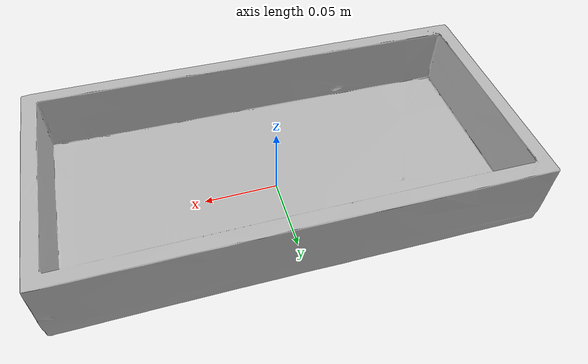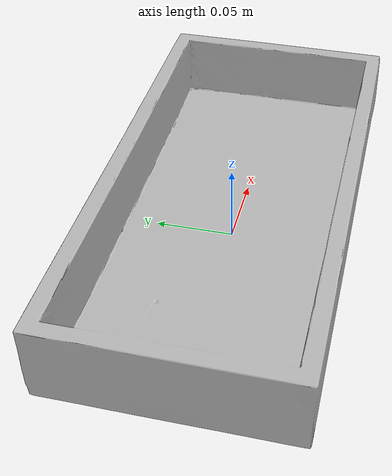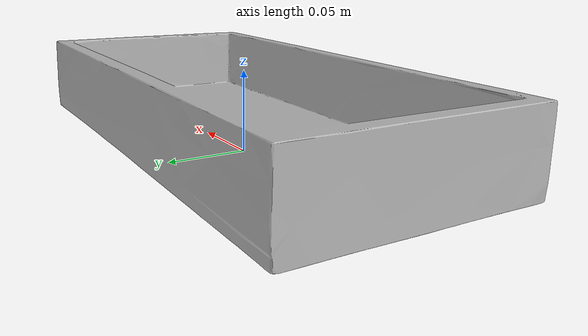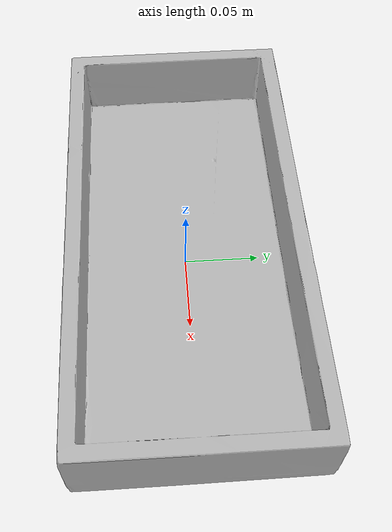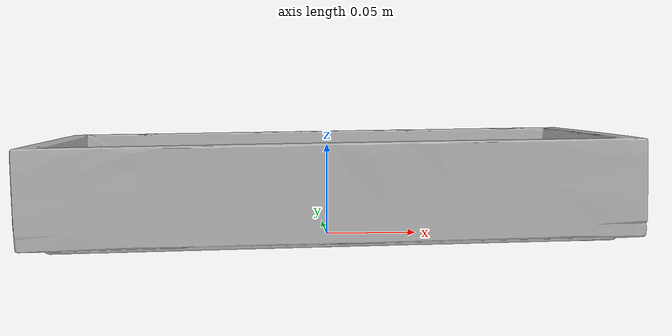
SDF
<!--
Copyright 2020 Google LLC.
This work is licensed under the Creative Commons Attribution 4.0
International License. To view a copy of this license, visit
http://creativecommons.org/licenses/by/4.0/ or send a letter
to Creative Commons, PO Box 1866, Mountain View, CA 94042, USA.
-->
<?xml version="1.0" ?>
<sdf version="1.6">
  <model name="Design_Ideas_Drawer_Store_Organizer">
    <link name="link_0">
      <visual name="visual">
        <geometry>
          <mesh>
            <uri>meshes/model.obj</uri>
          </mesh>
        </geometry>
      </visual>
      <collision name="collision_0">
        <geometry>
          <mesh>
            <uri>meshes/model.obj</uri>
          </mesh>
        </geometry>
      </collision>
    </link>
  </model>
</sdf>
